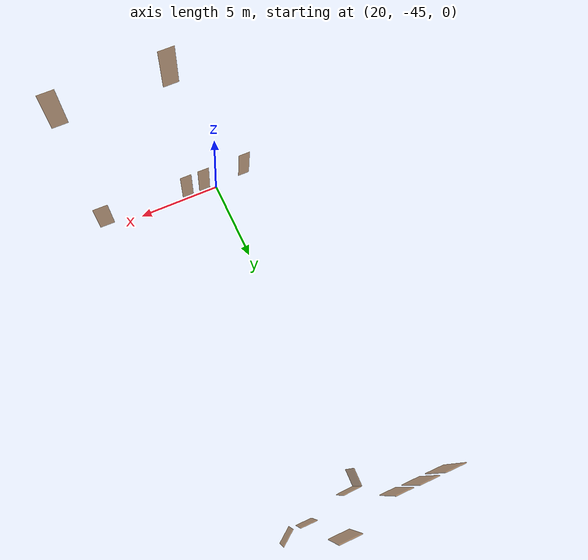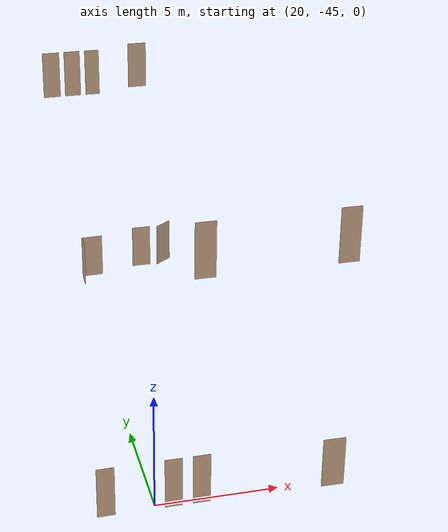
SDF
<sdf version="1.7">
 <world name="sim_world">
  <model name="part2_3">
   <pose>20.919621237898262 -25.424450441570542 0.0 0 0 -3.1088230642559003</pose>
   <link name="right">
    <pose>0 0 1.11 0 0 0</pose>
    <visual name="right_visual">
     <geometry><box><size>1.0312199456807118 0.03 2.2</size></box></geometry>
     <material>
      <ambient>0.5 0.25 0 0.6</ambient>
      <diffuse>0.5 0.25 0 0.6</diffuse>
      <pbr><metal><metalness>0.0</metalness></metal></pbr>
     </material>
    </visual>
    <collision name="right_collision">
     <geometry><box><size>1.0312199456807118 0.03 2.2</size></box></geometry>
     <surface><contact><collide_bitmask>0x02</collide_bitmask></contact></surface>
    </collision>
    <inertial>
     <mass>50.0</mass>
     <inertia><ixx>20.17041666666667</ixx><iyy>24.59756073487388</iyy><izz>4.434644068207209</izz></inertia>
    </inertial>
   </link>
   <joint name="right_joint" type="revolute">
    <parent>world</parent>
    <child>right</child>
    <axis><xyz>0 0 -1</xyz><limit><lower>0</lower><upper>1.57</upper></limit></axis>
    <pose>0.5206099728403559 0 0 0 0 0</pose>
   </joint>
   <plugin name="register_component" filename="libregister_component.so">
    <component name="Door">
     <v_max_door>0.5</v_max_door>
     <a_max_door>0.3</a_max_door>
     <a_nom_door>0.15</a_nom_door>
     <dx_min_door>0.01</dx_min_door>
     <f_max_door>500.0</f_max_door>
     <ros_interface>true</ros_interface>
     <door name="part2_3" type="SwingDoor" left_joint_name="empty_joint" right_joint_name="right_joint"/>
    </component>
   </plugin>
  </model>
  <model name="part2_2">
   <pose>20.38263480093005 -25.917791185768593 0.0 0 0 1.535839882828038</pose>
   <link name="right">
    <pose>0 0 1.11 0 0 0</pose>
    <visual name="right_visual">
     <geometry><box><size>0.9431495373669919 0.03 2.2</size></box></geometry>
     <material>
      <ambient>0.5 0.25 0 0.6</ambient>
      <diffuse>0.5 0.25 0 0.6</diffuse>
      <pbr><metal><metalness>0.0</metalness></metal></pbr>
     </material>
    </visual>
    <collision name="right_collision">
     <geometry><box><size>0.9431495373669919 0.03 2.2</size></box></geometry>
     <surface><contact><collide_bitmask>0x02</collide_bitmask></contact></surface>
    </collision>
    <inertial>
     <mass>50.0</mass>
     <inertia><ixx>20.17041666666667</ixx><iyy>23.87304604098155</iyy><izz>3.710129374314879</izz></inertia>
    </inertial>
   </link>
   <joint name="right_joint" type="revolute">
    <parent>world</parent>
    <child>right</child>
    <axis><xyz>0 0 1</xyz><limit><lower>0</lower><upper>1.57</upper></limit></axis>
    <pose>0.47657476868349596 0 0 0 0 0</pose>
   </joint>
   <plugin name="register_component" filename="libregister_component.so">
    <component name="Door">
     <v_max_door>0.5</v_max_door>
     <a_max_door>0.3</a_max_door>
     <a_nom_door>0.15</a_nom_door>
     <dx_min_door>0.01</dx_min_door>
     <f_max_door>500.0</f_max_door>
     <ros_interface>true</ros_interface>
     <door name="part2_2" type="SwingDoor" left_joint_name="empty_joint" right_joint_name="right_joint"/>
    </component>
   </plugin>
  </model>
  <model name="part2_6">
   <pose>23.62189937637335 -24.873600078663575 0.0 0 0 3.137896065827331</pose>
   <link name="right">
    <pose>0 0 1.11 0 0 0</pose>
    <visual name="right_visual">
     <geometry><box><size>0.9276185826104854 0.03 2.2</size></box></geometry>
     <material>
      <ambient>0.5 0.25 0 0.6</ambient>
      <diffuse>0.5 0.25 0 0.6</diffuse>
      <pbr><metal><metalness>0.0</metalness></metal></pbr>
     </material>
    </visual>
    <collision name="right_collision">
     <geometry><box><size>0.9276185826104854 0.03 2.2</size></box></geometry>
     <surface><contact><collide_bitmask>0x02</collide_bitmask></contact></surface>
    </collision>
    <inertial>
     <mass>50.0</mass>
     <inertia><ixx>20.17041666666667</ixx><iyy>23.751984311684527</iyy><izz>3.589067645017858</izz></inertia>
    </inertial>
   </link>
   <joint name="right_joint" type="revolute">
    <parent>world</parent>
    <child>right</child>
    <axis><xyz>0 0 1</xyz><limit><lower>0</lower><upper>1.57</upper></limit></axis>
    <pose>0.4688092913052427 0 0 0 0 0</pose>
   </joint>
   <plugin name="register_component" filename="libregister_component.so">
    <component name="Door">
     <v_max_door>0.5</v_max_door>
     <a_max_door>0.3</a_max_door>
     <a_nom_door>0.15</a_nom_door>
     <dx_min_door>0.01</dx_min_door>
     <f_max_door>500.0</f_max_door>
     <ros_interface>true</ros_interface>
     <door name="part2_6" type="SwingDoor" left_joint_name="empty_joint" right_joint_name="right_joint"/>
    </component>
   </plugin>
  </model>
  <model name="part2_7_end">
   <pose>24.838442831288784 -24.697043623681914 0.0 0 0 -2.519063830197608</pose>
   <link name="right">
    <pose>0 0 1.11 0 0 0</pose>
    <visual name="right_visual">
     <geometry><box><size>0.9834981706830346 0.03 2.2</size></box></geometry>
     <material>
      <ambient>0.5 0.25 0 0.6</ambient>
      <diffuse>0.5 0.25 0 0.6</diffuse>
      <pbr><metal><metalness>0.0</metalness></metal></pbr>
     </material>
    </visual>
    <collision name="right_collision">
     <geometry><box><size>0.9834981706830346 0.03 2.2</size></box></geometry>
     <surface><contact><collide_bitmask>0x02</collide_bitmask></contact></surface>
    </collision>
    <inertial>
     <mass>50.0</mass>
     <inertia><ixx>20.17041666666667</ixx><iyy>24.19695271557032</iyy><izz>4.034036048903648</izz></inertia>
    </inertial>
   </link>
   <joint name="right_joint" type="revolute">
    <parent>world</parent>
    <child>right</child>
    <axis><xyz>0 0 -1</xyz><limit><lower>0</lower><upper>1.57</upper></limit></axis>
    <pose>0.4967490853415173 0 0 0 0 0</pose>
   </joint>
   <plugin name="register_component" filename="libregister_component.so">
    <component name="Door">
     <v_max_door>0.5</v_max_door>
     <a_max_door>0.3</a_max_door>
     <a_nom_door>0.15</a_nom_door>
     <dx_min_door>0.01</dx_min_door>
     <f_max_door>500.0</f_max_door>
     <ros_interface>true</ros_interface>
     <door name="part2_7_end" type="SwingDoor" left_joint_name="empty_joint" right_joint_name="right_joint"/>
    </component>
   </plugin>
  </model>
  <model name="part6_4">
   <pose>27.152362558267583 -45.32425476623065 0.0 0 0 3.1304241835223103</pose>
   <link name="right">
    <pose>0 0 1.11 0 0 0</pose>
    <visual name="right_visual">
     <geometry><box><size>0.9181546595342762 0.03 2.2</size></box></geometry>
     <material>
      <ambient>0.5 0.25 0 0.6</ambient>
      <diffuse>0.5 0.25 0 0.6</diffuse>
      <pbr><metal><metalness>0.0</metalness></metal></pbr>
     </material>
    </visual>
    <collision name="right_collision">
     <geometry><box><size>0.9181546595342762 0.03 2.2</size></box></geometry>
     <surface><contact><collide_bitmask>0x02</collide_bitmask></contact></surface>
    </collision>
    <inertial>
     <mass>50.0</mass>
     <inertia><ixx>20.17041666666667</ixx><iyy>23.679199911768766</iyy><izz>3.5162832451020947</izz></inertia>
    </inertial>
   </link>
   <joint name="right_joint" type="revolute">
    <parent>world</parent>
    <child>right</child>
    <axis><xyz>0 0 -1</xyz><limit><lower>0</lower><upper>1.57</upper></limit></axis>
    <pose>0.4640773297671381 0 0 0 0 0</pose>
   </joint>
   <plugin name="register_component" filename="libregister_component.so">
    <component name="Door">
     <v_max_door>0.5</v_max_door>
     <a_max_door>0.3</a_max_door>
     <a_nom_door>0.15</a_nom_door>
     <dx_min_door>0.01</dx_min_door>
     <f_max_door>500.0</f_max_door>
     <ros_interface>true</ros_interface>
     <door name="part6_4" type="SwingDoor" left_joint_name="empty_joint" right_joint_name="right_joint"/>
    </component>
   </plugin>
  </model>
  <model name="part6_3">
   <pose>21.833918270380313 -45.2030256453194 0.0 0 0 -3.141366388773305</pose>
   <link name="right">
    <pose>0 0 1.11 0 0 0</pose>
    <visual name="right_visual">
     <geometry><box><size>0.6991783408263198 0.03 2.2</size></box></geometry>
     <material>
      <ambient>0.5 0.25 0 0.6</ambient>
      <diffuse>0.5 0.25 0 0.6</diffuse>
      <pbr><metal><metalness>0.0</metalness></metal></pbr>
     </material>
    </visual>
    <collision name="right_collision">
     <geometry><box><size>0.6991783408263198 0.03 2.2</size></box></geometry>
     <surface><contact><collide_bitmask>0x02</collide_bitmask></contact></surface>
    </collision>
    <inertial>
     <mass>50.0</mass>
     <inertia><ixx>20.17041666666667</ixx><iyy>22.203543134502695</iyy><izz>2.040626467836023</izz></inertia>
    </inertial>
   </link>
   <joint name="right_joint" type="revolute">
    <parent>world</parent>
    <child>right</child>
    <axis><xyz>0 0 -1</xyz><limit><lower>0</lower><upper>1.57</upper></limit></axis>
    <pose>0.3545891704131599 0 0 0 0 0</pose>
   </joint>
   <plugin name="register_component" filename="libregister_component.so">
    <component name="Door">
     <v_max_door>0.5</v_max_door>
     <a_max_door>0.3</a_max_door>
     <a_nom_door>0.15</a_nom_door>
     <dx_min_door>0.01</dx_min_door>
     <f_max_door>500.0</f_max_door>
     <ros_interface>true</ros_interface>
     <door name="part6_3" type="SwingDoor" left_joint_name="empty_joint" right_joint_name="right_joint"/>
    </component>
   </plugin>
  </model>
  <model name="part6_1">
   <pose>18.052363985373013 -45.202496120370355 0.0 0 0 -3.1386166731971628</pose>
   <link name="right">
    <pose>0 0 1.11 0 0 0</pose>
    <visual name="right_visual">
     <geometry><box><size>0.7017328218687007 0.03 2.2</size></box></geometry>
     <material>
      <ambient>0.5 0.25 0 0.6</ambient>
      <diffuse>0.5 0.25 0 0.6</diffuse>
      <pbr><metal><metalness>0.0</metalness></metal></pbr>
     </material>
    </visual>
    <collision name="right_collision">
     <geometry><box><size>0.7017328218687007 0.03 2.2</size></box></geometry>
     <surface><contact><collide_bitmask>0x02</collide_bitmask></contact></surface>
    </collision>
    <inertial>
     <mass>50.0</mass>
     <inertia><ixx>20.17041666666667</ixx><iyy>22.218453972032545</iyy><izz>2.0555373053658736</izz></inertia>
    </inertial>
   </link>
   <joint name="right_joint" type="revolute">
    <parent>world</parent>
    <child>right</child>
    <axis><xyz>0 0 1</xyz><limit><lower>0</lower><upper>1.57</upper></limit></axis>
    <pose>0.35586641093435034 0 0 0 0 0</pose>
   </joint>
   <plugin name="register_component" filename="libregister_component.so">
    <component name="Door">
     <v_max_door>0.5</v_max_door>
     <a_max_door>0.3</a_max_door>
     <a_nom_door>0.15</a_nom_door>
     <dx_min_door>0.01</dx_min_door>
     <f_max_door>500.0</f_max_door>
     <ros_interface>true</ros_interface>
     <door name="part6_1" type="SwingDoor" left_joint_name="empty_joint" right_joint_name="right_joint"/>
    </component>
   </plugin>
  </model>
  <model name="part6_2">
   <pose>20.71829745689059 -45.20227147342227 0.0 0 0 3.139241365842667</pose>
   <link name="right">
    <pose>0 0 1.11 0 0 0</pose>
    <visual name="right_visual">
     <geometry><box><size>0.6997419019653975 0.03 2.2</size></box></geometry>
     <material>
      <ambient>0.5 0.25 0 0.6</ambient>
      <diffuse>0.5 0.25 0 0.6</diffuse>
      <pbr><metal><metalness>0.0</metalness></metal></pbr>
     </material>
    </visual>
    <collision name="right_collision">
     <geometry><box><size>0.6997419019653975 0.03 2.2</size></box></geometry>
     <surface><contact><collide_bitmask>0x02</collide_bitmask></contact></surface>
    </collision>
    <inertial>
     <mass>50.0</mass>
     <inertia><ixx>20.17041666666667</ixx><iyy>22.206828039025638</iyy><izz>2.0439113723589672</izz></inertia>
    </inertial>
   </link>
   <joint name="right_joint" type="revolute">
    <parent>world</parent>
    <child>right</child>
    <axis><xyz>0 0 1</xyz><limit><lower>0</lower><upper>1.57</upper></limit></axis>
    <pose>0.3548709509826988 0 0 0 0 0</pose>
   </joint>
   <plugin name="register_component" filename="libregister_component.so">
    <component name="Door">
     <v_max_door>0.5</v_max_door>
     <a_max_door>0.3</a_max_door>
     <a_nom_door>0.15</a_nom_door>
     <dx_min_door>0.01</dx_min_door>
     <f_max_door>500.0</f_max_door>
     <ros_interface>true</ros_interface>
     <door name="part6_2" type="SwingDoor" left_joint_name="empty_joint" right_joint_name="right_joint"/>
    </component>
   </plugin>
  </model>
  <model name="L3_part3_3">
   <pose>21.828916714404578 -45.422752726957995 10.0 0 0 -3.1397482828974144</pose>
   <link name="right">
    <pose>0 0 1.11 0 0 0</pose>
    <visual name="right_visual">
     <geometry><box><size>0.7803997026544611 0.03 2.2</size></box></geometry>
     <material>
      <ambient>0.5 0.25 0 0.6</ambient>
      <diffuse>0.5 0.25 0 0.6</diffuse>
      <pbr><metal><metalness>0.0</metalness></metal></pbr>
     </material>
    </visual>
    <collision name="right_collision">
     <geometry><box><size>0.7803997026544611 0.03 2.2</size></box></geometry>
     <surface><contact><collide_bitmask>0x02</collide_bitmask></contact></surface>
    </collision>
    <inertial>
     <mass>50.0</mass>
     <inertia><ixx>20.17041666666667</ixx><iyy>22.70426539959655</iyy><izz>2.5413487329298805</izz></inertia>
    </inertial>
   </link>
   <joint name="right_joint" type="revolute">
    <parent>world</parent>
    <child>right</child>
    <axis><xyz>0 0 -1</xyz><limit><lower>0</lower><upper>1.57</upper></limit></axis>
    <pose>0.39519985132723057 0 0 0 0 0</pose>
   </joint>
   <plugin name="register_component" filename="libregister_component.so">
    <component name="Door">
     <v_max_door>0.5</v_max_door>
     <a_max_door>0.3</a_max_door>
     <a_nom_door>0.15</a_nom_door>
     <dx_min_door>0.01</dx_min_door>
     <f_max_door>500.0</f_max_door>
     <ros_interface>true</ros_interface>
     <door name="L3_part3_3" type="SwingDoor" left_joint_name="empty_joint" right_joint_name="right_joint"/>
    </component>
   </plugin>
  </model>
  <model name="L3_part3_4">
   <pose>27.208378253257358 -45.39786623608538 10.0 0 0 -3.139748282897418</pose>
   <link name="right">
    <pose>0 0 1.11 0 0 0</pose>
    <visual name="right_visual">
     <geometry><box><size>0.7896435765819253 0.03 2.2</size></box></geometry>
     <material>
      <ambient>0.5 0.25 0 0.6</ambient>
      <diffuse>0.5 0.25 0 0.6</diffuse>
      <pbr><metal><metalness>0.0</metalness></metal></pbr>
     </material>
    </visual>
    <collision name="right_collision">
     <geometry><box><size>0.7896435765819253 0.03 2.2</size></box></geometry>
     <surface><contact><collide_bitmask>0x02</collide_bitmask></contact></surface>
    </collision>
    <inertial>
     <mass>50.0</mass>
     <inertia><ixx>20.17041666666667</ixx><iyy>22.764737408487903</iyy><izz>2.6018207418212294</izz></inertia>
    </inertial>
   </link>
   <joint name="right_joint" type="revolute">
    <parent>world</parent>
    <child>right</child>
    <axis><xyz>0 0 -1</xyz><limit><lower>0</lower><upper>1.57</upper></limit></axis>
    <pose>0.39982178829096265 0 0 0 0 0</pose>
   </joint>
   <plugin name="register_component" filename="libregister_component.so">
    <component name="Door">
     <v_max_door>0.5</v_max_door>
     <a_max_door>0.3</a_max_door>
     <a_nom_door>0.15</a_nom_door>
     <dx_min_door>0.01</dx_min_door>
     <f_max_door>500.0</f_max_door>
     <ros_interface>true</ros_interface>
     <door name="L3_part3_4" type="SwingDoor" left_joint_name="empty_joint" right_joint_name="right_joint"/>
    </component>
   </plugin>
  </model>
  <model name="L3_part4_3">
   <pose>19.209497211417013 -25.54313692236311 10.0 0 0 -3.139748282897414</pose>
   <link name="right">
    <pose>0 0 1.11 0 0 0</pose>
    <visual name="right_visual">
     <geometry><box><size>0.7980632589529205 0.03 2.2</size></box></geometry>
     <material>
      <ambient>0.5 0.25 0 0.6</ambient>
      <diffuse>0.5 0.25 0 0.6</diffuse>
      <pbr><metal><metalness>0.0</metalness></metal></pbr>
     </material>
    </visual>
    <collision name="right_collision">
     <geometry><box><size>0.7980632589529205 0.03 2.2</size></box></geometry>
     <surface><contact><collide_bitmask>0x02</collide_bitmask></contact></surface>
    </collision>
    <inertial>
     <mass>50.0</mass>
     <inertia><ixx>20.17041666666667</ixx><iyy>22.820437355377322</iyy><izz>2.6575206887106515</izz></inertia>
    </inertial>
   </link>
   <joint name="right_joint" type="revolute">
    <parent>world</parent>
    <child>right</child>
    <axis><xyz>0 0 -1</xyz><limit><lower>0</lower><upper>1.57</upper></limit></axis>
    <pose>0.40403162947646026 0 0 0 0 0</pose>
   </joint>
   <plugin name="register_component" filename="libregister_component.so">
    <component name="Door">
     <v_max_door>0.5</v_max_door>
     <a_max_door>0.3</a_max_door>
     <a_nom_door>0.15</a_nom_door>
     <dx_min_door>0.01</dx_min_door>
     <f_max_door>500.0</f_max_door>
     <ros_interface>true</ros_interface>
     <door name="L3_part4_3" type="SwingDoor" left_joint_name="empty_joint" right_joint_name="right_joint"/>
    </component>
   </plugin>
  </model>
  <model name="L3_part4_4">
   <pose>20.226523132385196 -25.536614961639813 10.0 0 0 -3.1275480734450616</pose>
   <link name="right">
    <pose>0 0 1.11 0 0 0</pose>
    <visual name="right_visual">
     <geometry><box><size>0.7516743256995784 0.03 2.2</size></box></geometry>
     <material>
      <ambient>0.5 0.25 0 0.6</ambient>
      <diffuse>0.5 0.25 0 0.6</diffuse>
      <pbr><metal><metalness>0.0</metalness></metal></pbr>
     </material>
    </visual>
    <collision name="right_collision">
     <geometry><box><size>0.7516743256995784 0.03 2.2</size></box></geometry>
     <surface><contact><collide_bitmask>0x02</collide_bitmask></contact></surface>
    </collision>
    <inertial>
     <mass>50.0</mass>
     <inertia><ixx>20.17041666666667</ixx><iyy>22.520892882982988</iyy><izz>2.357976216316316</izz></inertia>
    </inertial>
   </link>
   <joint name="right_joint" type="revolute">
    <parent>world</parent>
    <child>right</child>
    <axis><xyz>0 0 -1</xyz><limit><lower>0</lower><upper>1.57</upper></limit></axis>
    <pose>0.3808371628497892 0 0 0 0 0</pose>
   </joint>
   <plugin name="register_component" filename="libregister_component.so">
    <component name="Door">
     <v_max_door>0.5</v_max_door>
     <a_max_door>0.3</a_max_door>
     <a_nom_door>0.15</a_nom_door>
     <dx_min_door>0.01</dx_min_door>
     <f_max_door>500.0</f_max_door>
     <ros_interface>true</ros_interface>
     <door name="L3_part4_4" type="SwingDoor" left_joint_name="empty_joint" right_joint_name="right_joint"/>
    </component>
   </plugin>
  </model>
  <model name="L3_part4_5">
   <pose>21.185132245282936 -25.54974704491611 10.0 0 0 -3.1369346524538946</pose>
   <link name="right">
    <pose>0 0 1.11 0 0 0</pose>
    <visual name="right_visual">
     <geometry><box><size>0.6734999150620188 0.03 2.2</size></box></geometry>
     <material>
      <ambient>0.5 0.25 0 0.6</ambient>
      <diffuse>0.5 0.25 0 0.6</diffuse>
      <pbr><metal><metalness>0.0</metalness></metal></pbr>
     </material>
    </visual>
    <collision name="right_collision">
     <geometry><box><size>0.6734999150620188 0.03 2.2</size></box></geometry>
     <surface><contact><collide_bitmask>0x02</collide_bitmask></contact></surface>
    </collision>
    <inertial>
     <mass>50.0</mass>
     <inertia><ixx>20.17041666666667</ixx><iyy>22.056675564952283</iyy><izz>1.8937588982856106</izz></inertia>
    </inertial>
   </link>
   <joint name="right_joint" type="revolute">
    <parent>world</parent>
    <child>right</child>
    <axis><xyz>0 0 -1</xyz><limit><lower>0</lower><upper>1.57</upper></limit></axis>
    <pose>0.3417499575310094 0 0 0 0 0</pose>
   </joint>
   <plugin name="register_component" filename="libregister_component.so">
    <component name="Door">
     <v_max_door>0.5</v_max_door>
     <a_max_door>0.3</a_max_door>
     <a_nom_door>0.15</a_nom_door>
     <dx_min_door>0.01</dx_min_door>
     <f_max_door>500.0</f_max_door>
     <ros_interface>true</ros_interface>
     <door name="L3_part4_5" type="SwingDoor" left_joint_name="empty_joint" right_joint_name="right_joint"/>
    </component>
   </plugin>
  </model>
  <model name="L3_part4_7">
   <pose>23.52279485893807 -24.93688214843367 10.0 0 0 -3.1397482828974175</pose>
   <link name="right">
    <pose>0 0 1.11 0 0 0</pose>
    <visual name="right_visual">
     <geometry><box><size>0.877557342605362 0.03 2.2</size></box></geometry>
     <material>
      <ambient>0.5 0.25 0 0.6</ambient>
      <diffuse>0.5 0.25 0 0.6</diffuse>
      <pbr><metal><metalness>0.0</metalness></metal></pbr>
     </material>
    </visual>
    <collision name="right_collision">
     <geometry><box><size>0.877557342605362 0.03 2.2</size></box></geometry>
     <surface><contact><collide_bitmask>0x02</collide_bitmask></contact></surface>
    </collision>
    <inertial>
     <mass>50.0</mass>
     <inertia><ixx>20.17041666666667</ixx><iyy>23.375445373169107</iyy><izz>3.2125287065024364</izz></inertia>
    </inertial>
   </link>
   <joint name="right_joint" type="revolute">
    <parent>world</parent>
    <child>right</child>
    <axis><xyz>0 0 1</xyz><limit><lower>0</lower><upper>1.57</upper></limit></axis>
    <pose>0.443778671302681 0 0 0 0 0</pose>
   </joint>
   <plugin name="register_component" filename="libregister_component.so">
    <component name="Door">
     <v_max_door>0.5</v_max_door>
     <a_max_door>0.3</a_max_door>
     <a_nom_door>0.15</a_nom_door>
     <dx_min_door>0.01</dx_min_door>
     <f_max_door>500.0</f_max_door>
     <ros_interface>true</ros_interface>
     <door name="L3_part4_7" type="SwingDoor" left_joint_name="empty_joint" right_joint_name="right_joint"/>
    </component>
   </plugin>
  </model>
 </world>
</sdf>
